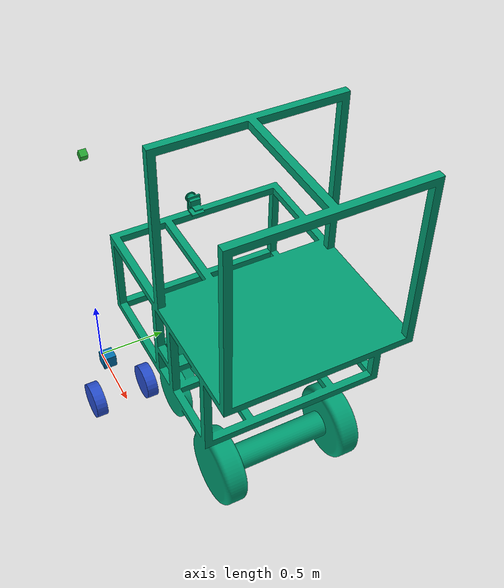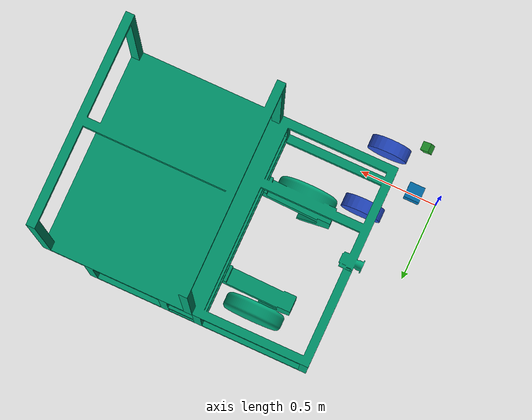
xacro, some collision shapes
<?xml version='1.0'?>

<robot name="myrobot" xmlns:xacro="http://www.ros.org/wiki/xacro">

  <xacro:property name="cameraSize" value="0.05"/>
  <xacro:property name="cameraMass" value="0.1"/>

  <xacro:include filename="$(find mybot_description)/urdf/mybot.gazebo" />
  <xacro:include filename="$(find mybot_description)/urdf/materials.xacro" />
  <xacro:include filename="$(find mybot_description)/urdf/macros.xacro" />

  <link name="left_wheel">
    <!--origin xyz="0.1 0.13 0.1" rpy="0 1.5707 1.5707"/-->
    <collision name="collision">
      <origin xyz="0 0 0" rpy="0 1.5707 1.5707"/>
      <geometry>
        <cylinder radius="0.130175" length="0.08255"/>
      </geometry>
    </collision>

    <visual name="left_wheel_visual">
      <origin xyz="0 0 0" rpy="0 1.5707 1.5707"/>
      <geometry>
        <cylinder radius="0.130175" length="0.08255"/>
      </geometry>
    </visual>

    <inertial>
      <origin xyz="0 0 0" rpy="0 1.5707 1.5707"/>
      <mass value="5"/>
      <inertia
        ixx=".1" ixy="0.0" ixz="0.0"
        iyy=".1" iyz="0.0"
        izz=".1"/>
    </inertial>
  </link>

  <link name="right_wheel">
    <!--origin xyz="0.1 -0.13 0.1" rpy="0 1.5707 1.5707"/-->
    <collision name="collision">
      <origin xyz="0 0 0" rpy="0 1.5707 1.5707"/>
      <geometry>
        <cylinder radius="0.130175" length="0.08255"/>
      </geometry>
    </collision>

    <visual name="right_wheel_visual">
      <origin xyz="0 0 0" rpy="0 1.5707 1.5707"/>
      <geometry>
        <cylinder radius="0.130175" length="0.08255"/>
      </geometry>
    </visual>

    <inertial>
      <origin xyz="0 0 0" rpy="0 1.5707 1.5707"/>
      <mass value="5"/>
      <inertia
        ixx=".1" ixy="0.0" ixz="0.0"
        iyy=".1" iyz="0.0"
        izz=".1"/>
    </inertial>
  </link>

  <link name='full_assembly'>
  	<!--origin xyz="0.46116875 0.30861 1.311275" rpy="1.5708 0 1.5708"/-->
  	<origin xyz="0 0 0" rpy="1.5708 0 1.5708"/>
  	<collision name="collision">
  		<!--origin xyz="0.46116875 0.30861 1.311275" rpy="1.5708 0 1.5708"/-->
  		<origin xyz="0 0 0" rpy="1.5708 0 1.5708"/>
  		<geometry>
  			<box size="0.9223375 0.61722 2.62255"/>
  		</geometry>
  	</collision>

  	<visual name="full_assembly_visual">
  		<!--origin xyz="0.46116875 0.30861 1.311275" rpy="1.5708 0 1.5708"/-->
  		<origin xyz="0 0 0" rpy="1.5708 0 1.5708"/>
  		<geometry>
  			<mesh scale="0.002 0.002 0.002" filename="package://mybot_description/meshes/igvc_final_assembly.STL"/>
  		</geometry>
  	</visual>

  	<inertial>
  		<mass value="45.3592"/>                            <!-- 100 lbs estimate in kgs -->
  		<!--origin xyz="0.46116875 0.30861 1.311275" rpy="1.5708 0 1.5708"/-->
  		<origin xyz="0 0 0" rpy="1.5708 0 1.5708"/>

  		<!-- Ih = 1/12 * m * (w^2 + d^2)
  		     Iw = 1/12 * m * (d^2 + h^2)
  		     Id = 1/12 * m * (w^2 + h^2) -->

  		<inertia ixx="27.43751182" ixy="0" ixz="0" iyy="29.21312014" iyz="0" izz="4.65561912" />
  	</inertial>
  </link>

  <joint type="continuous" name="left_wheel_hinge">
    <origin xyz=".4 0.2 0" rpy="0 0 0"/>
    <!--origin xyz="0.1 0.13 0" rpy="0 1.5707 1.5707"/-->
    <child link="left_wheel"/>
    <parent link="full_assembly"/>
    <axis xyz="0 1 0" rpy="0 0 0"/>
    <limit effort="10000" velocity="1000"/>
    <joint_properties damping="1.0" friction="1.0"/>
  </joint>

  <joint type="continuous" name="right_wheel_hinge">
    <origin xyz=".4 -0.2 0" rpy="0 0 0"/>
    <!--origin xyz="0.1 -0.13 0" rpy="0 1.5707 1.5707"/-->
    <child link="right_wheel"/>
    <parent link="full_assembly"/>
    <axis xyz="0 1 0" rpy="0 0 0"/>
    <limit effort="10000" velocity="1000"/>
    <joint_properties damping="1.0" friction="1.0"/>
  </joint>

  <link name="camera">
    <collision>
      <origin xyz="0 0 0" rpy="0 0 0"/>
      <geometry>
        <box size="${cameraSize} ${cameraSize} ${cameraSize}"/>
      </geometry>
    </collision>

    <visual>
      <origin xyz="0 0 0" rpy="0 0 0"/>
      <geometry>
        <box size="${cameraSize} ${cameraSize} ${cameraSize}"/>
      </geometry>
      <material name="green"/>
    </visual>

    <inertial>
      <mass value="${cameraMass}" />
      <origin xyz="0 0 0" rpy="0 0 0"/>
      <box_inertia m="${cameraMass}" x="${cameraSize}" y="${cameraSize}" z="${cameraSize}" />
      <inertia ixx="1e-6" ixy="0" ixz="0" iyy="1e-6" iyz="0" izz="1e-6" />
    </inertial>
  </link>

  <joint name="camera_joint" type="fixed">
    <axis xyz="0 1 0" />
    <origin xyz=".2 0 2" rpy="0 0.5 0"/>
    <parent link="full_assembly"/>
    <child link="camera"/>
  </joint>

  <joint name="hokuyo_joint" type="fixed">
    <axis xyz="0 1 0" />
    <origin xyz=".15 0 .1" rpy="0 0 0"/>
    <parent link="full_assembly"/>
    <child link="hokuyo"/>
  </joint>

  <!-- Hokuyo Laser -->
  <link name="hokuyo">
    <collision>
      <origin xyz="0 0 0" rpy="0 0 0"/>
      <geometry>
    <box size="0.1 0.1 0.1"/>
      </geometry>
    </collision>

    <visual>
      <origin xyz="0 0 0" rpy="0 0 0"/>
      <geometry>
        <mesh filename="package://mybot_description/meshes/hokuyo.dae"/>
      </geometry>
    </visual>

    <inertial>
      <mass value="1e-5" />
      <origin xyz="0 0 0" rpy="0 0 0"/>
      <inertia ixx="1e-6" ixy="0" ixz="0" iyy="1e-6" iyz="0" izz="1e-6" />
    </inertial>
  </link>

</robot>
